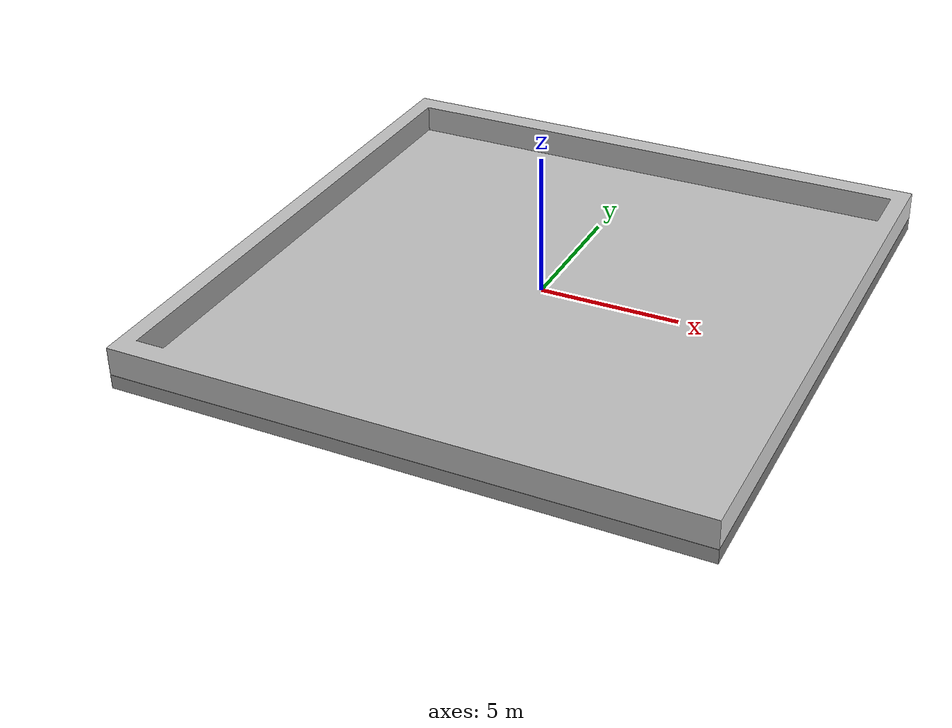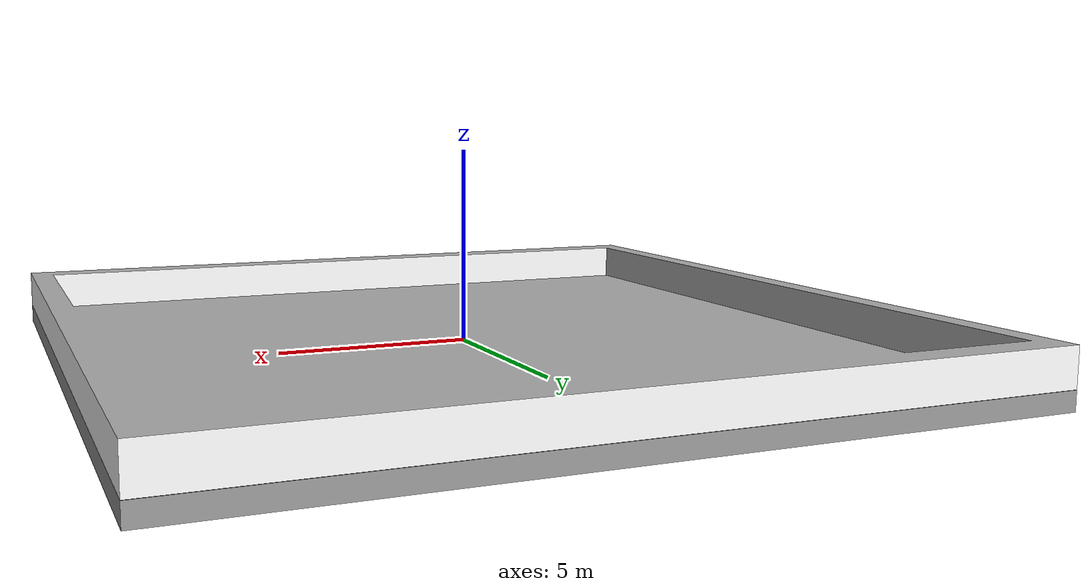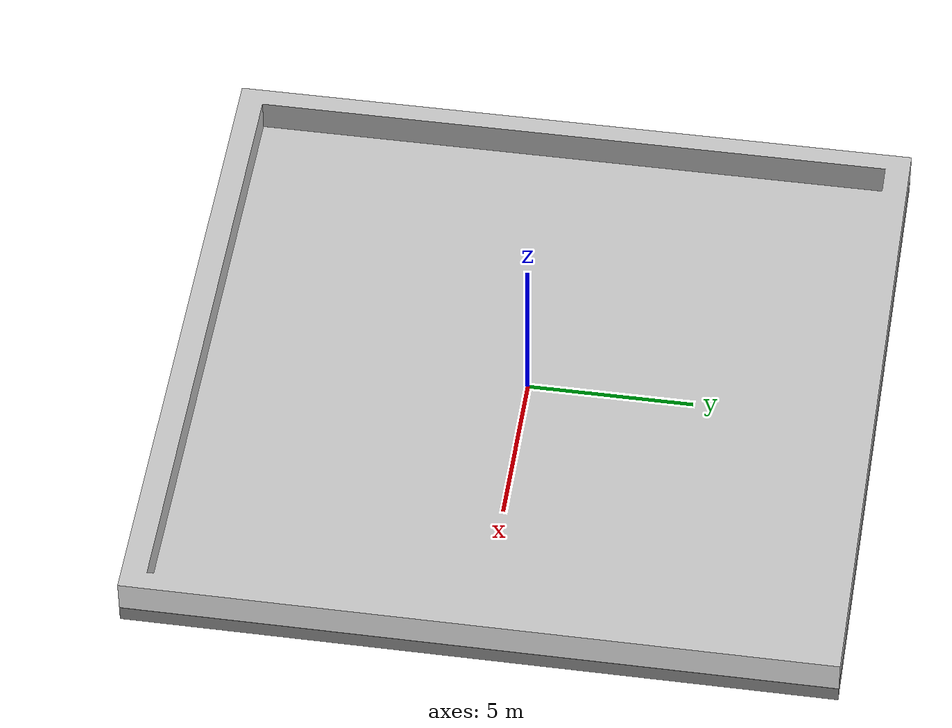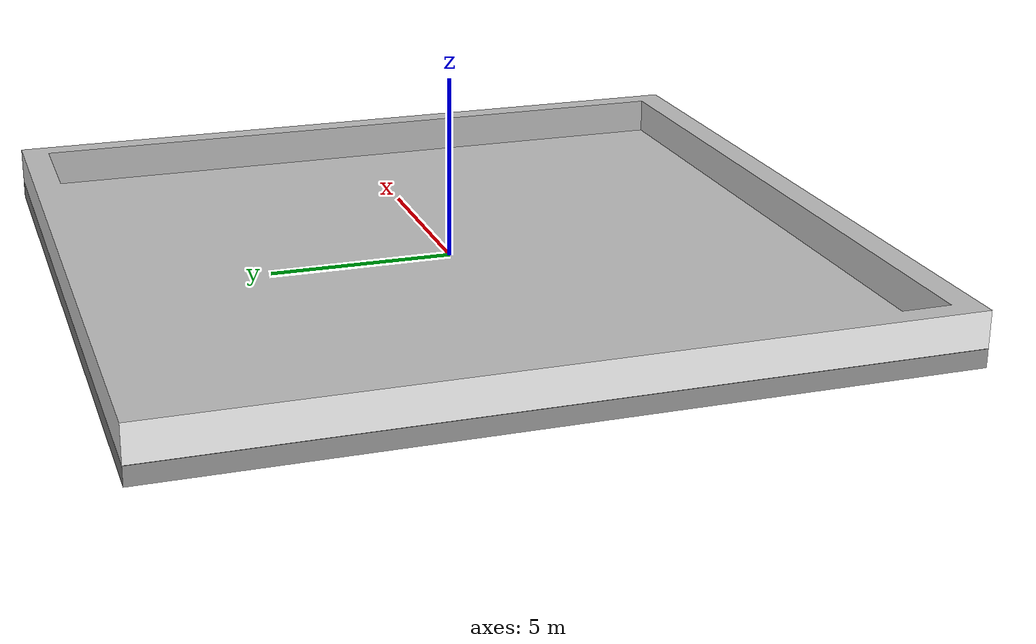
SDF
<?xml version='1.0'?>
<sdf version='1.6'>
  <model name='warehouse_ground'>
    <link name='base_link'>
      <inertial>
        <mass>0.1</mass>
        <inertia>
          <ixx>0</ixx>
          <ixy>0</ixy>
          <ixz>0</ixz>
          <iyy>0</iyy>
          <iyz>0</iyz>
          <izz>0</izz>
        </inertia>
        <pose frame=''>0 0 0 0 -0 0</pose>
      </inertial>
      <pose frame=''>0 0 0 0 -0 0</pose>
      <self_collide>0</self_collide>
      <enable_wind>0</enable_wind>
      <kinematic>0</kinematic>
      <gravity>1</gravity>
      <visual name='visual'>
        <pose frame=''>-10.2 -10.5 0 0 -0 0</pose>
        <geometry>
          <mesh>
            <uri>model://warehouse_ground/ground.dae</uri>
            <scale>1.2 1.5 1</scale>
          </mesh>
        </geometry>
        <transparency>0</transparency>
        <cast_shadows>0</cast_shadows>
        <material>
          <shader type='vertex'>
            <normal_map>__default__</normal_map>
          </shader>
          <emissive>0 0 0 1</emissive>
        </material>
      </visual>
      <collision name='collision'>
        <laser_retro>0</laser_retro>
        <max_contacts>10</max_contacts>
        <pose frame=''>-10.2 -10.5 0 0 -0 0</pose>
        <geometry>
          <mesh>
            <uri>/home/gaoxinzhi/model_editor_models/warehouse_ground/ground_collision.dae</uri>
            <scale>1.2 1.5 1</scale>
          </mesh>
        </geometry>
        <surface>
          <friction>
            <ode>
              <mu>1</mu>
              <mu2>1</mu2>
              <fdir1>0 0 0</fdir1>
              <slip1>0</slip1>
              <slip2>0</slip2>
            </ode>
            <torsional>
              <coefficient>1</coefficient>
              <patch_radius>0</patch_radius>
              <surface_radius>0</surface_radius>
              <use_patch_radius>1</use_patch_radius>
              <ode>
                <slip>0</slip>
              </ode>
            </torsional>
          </friction>
          <bounce>
            <restitution_coefficient>0</restitution_coefficient>
            <threshold>1e+06</threshold>
          </bounce>
          <contact>
            <collide_without_contact>0</collide_without_contact>
            <collide_without_contact_bitmask>1</collide_without_contact_bitmask>
            <collide_bitmask>1</collide_bitmask>
            <ode>
              <soft_cfm>0</soft_cfm>
              <soft_erp>0.2</soft_erp>
              <kp>1e+13</kp>
              <kd>1</kd>
              <max_vel>0.01</max_vel>
              <min_depth>0</min_depth>
            </ode>
            <bullet>
              <split_impulse>1</split_impulse>
              <split_impulse_penetration_threshold>-0.01</split_impulse_penetration_threshold>
              <soft_cfm>0</soft_cfm>
              <soft_erp>0.2</soft_erp>
              <kp>1e+13</kp>
              <kd>1</kd>
            </bullet>
          </contact>
        </surface>
      </collision>
    </link>
    <link name='link_0'>
      <inertial>
        <mass>1.68575e+06</mass>
        <inertia>
          <ixx>0</ixx>
          <ixy>0</ixy>
          <ixz>0</ixz>
          <iyy>0</iyy>
          <iyz>0</iyz>
          <izz>0</izz>
        </inertia>
        <pose frame=''>0 0 0 0 -0 0</pose>
      </inertial>
      <pose frame=''>-1e-06 0 -0.257001 0 -0 0</pose>
      <gravity>1</gravity>
      <self_collide>0</self_collide>
      <kinematic>0</kinematic>
      <enable_wind>0</enable_wind>
      <visual name='visual'>
        <pose frame=''>0 0 0 0 -0 0</pose>
        <geometry>
          <box>
            <size>20.4 21 0.5</size>
          </box>
        </geometry>
        <material>
          <lighting>1</lighting>
          <script>
            <uri>file://media/materials/scripts/gazebo.material</uri>
            <name>Gazebo/Grey</name>
          </script>
          <shader type='vertex'>
            <normal_map>__default__</normal_map>
          </shader>
          <ambient>0.3 0.3 0.3 1</ambient>
          <diffuse>0.7 0.7 0.7 1</diffuse>
          <specular>0.01 0.01 0.01 1</specular>
          <emissive>0 0 0 1</emissive>
        </material>
        <transparency>0</transparency>
        <cast_shadows>1</cast_shadows>
      </visual>
      <collision name='collision'>
        <laser_retro>0</laser_retro>
        <max_contacts>10</max_contacts>
        <pose frame=''>0 0 0 0 -0 0</pose>
        <geometry>
          <box>
            <size>20.4 21 0.5</size>
          </box>
        </geometry>
        <surface>
          <friction>
            <ode>
              <mu>1</mu>
              <mu2>1</mu2>
              <fdir1>0 0 0</fdir1>
              <slip1>0</slip1>
              <slip2>0</slip2>
            </ode>
            <torsional>
              <coefficient>1</coefficient>
              <patch_radius>0</patch_radius>
              <surface_radius>0</surface_radius>
              <use_patch_radius>1</use_patch_radius>
              <ode>
                <slip>0</slip>
              </ode>
            </torsional>
          </friction>
          <bounce>
            <restitution_coefficient>0</restitution_coefficient>
            <threshold>1e+06</threshold>
          </bounce>
          <contact>
            <collide_without_contact>0</collide_without_contact>
            <collide_without_contact_bitmask>1</collide_without_contact_bitmask>
            <collide_bitmask>1</collide_bitmask>
            <ode>
              <soft_cfm>0</soft_cfm>
              <soft_erp>0.2</soft_erp>
              <kp>1e+13</kp>
              <kd>1</kd>
              <max_vel>0.01</max_vel>
              <min_depth>0</min_depth>
            </ode>
            <bullet>
              <split_impulse>1</split_impulse>
              <split_impulse_penetration_threshold>-0.01</split_impulse_penetration_threshold>
              <soft_cfm>0</soft_cfm>
              <soft_erp>0.2</soft_erp>
              <kp>1e+13</kp>
              <kd>1</kd>
            </bullet>
          </contact>
        </surface>
      </collision>
    </link>
    <joint name='base_link_JOINT_0' type='fixed'>
      <parent>base_link</parent>
      <child>link_0</child>
      <pose frame=''>0 0 0 0 -0 0</pose>
      <physics>
        <ode>
          <limit>
            <cfm>0</cfm>
            <erp>0.2</erp>
          </limit>
          <suspension>
            <cfm>0</cfm>
            <erp>0.2</erp>
          </suspension>
        </ode>
      </physics>
    </joint>
    <static>1</static>
    <allow_auto_disable>0</allow_auto_disable>
  </model>
</sdf>
